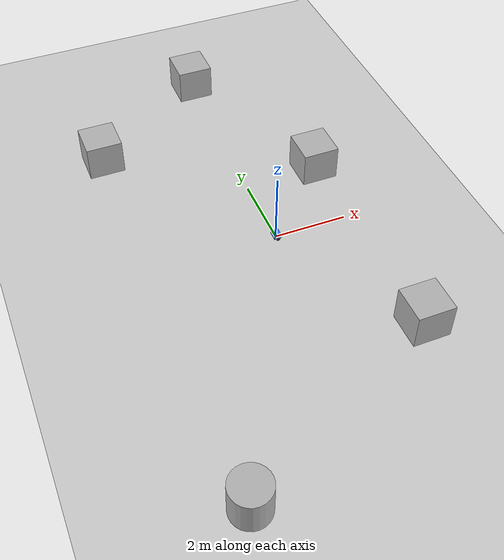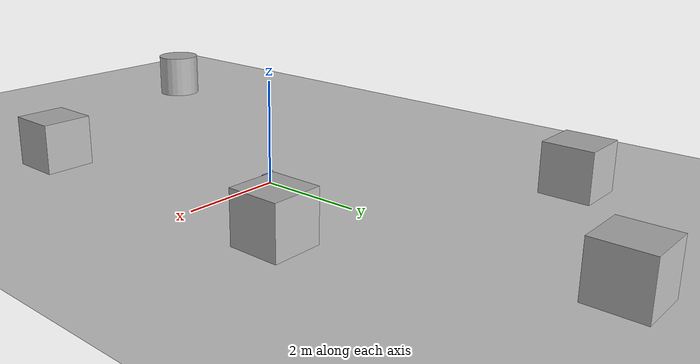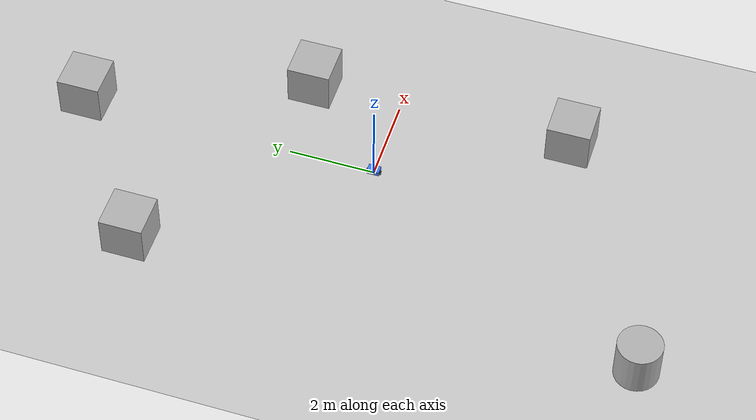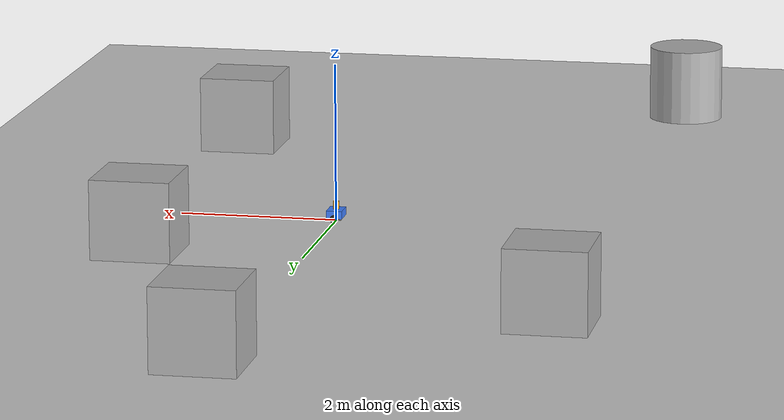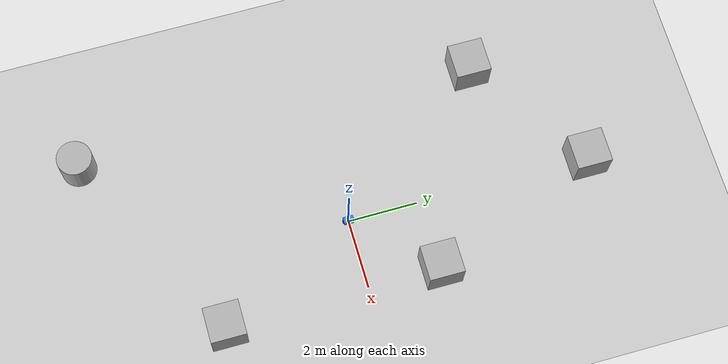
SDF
<sdf version="1.10">
 <world name="empty">
  <physics name="1ms" type="ignored">
   <max_step_size>0.001</max_step_size>
   <real_time_factor>1</real_time_factor>
   <real_time_update_rate>1000</real_time_update_rate>
  </physics>
  <plugin name="gz::sim::systems::Physics" filename="gz-sim-physics-system"/>
  <plugin name="gz::sim::systems::UserCommands" filename="gz-sim-user-commands-system"/>
  <plugin name="gz::sim::systems::SceneBroadcaster" filename="gz-sim-scene-broadcaster-system"/>
  <plugin name="gz::sim::systems::Contact" filename="gz-sim-contact-system"/>
  <plugin name="gz::sim::systems::Sensors" filename="gz-sim-sensors-system">
   <render_engine>ogre2</render_engine>
  </plugin>
  <plugin name="gz::sim::systems::Imu" filename="gz-sim-imu-system"/>
  <gravity>0 0 -9.8000000000000007</gravity>
  <magnetic_field>5.5644999999999998e-06 2.2875799999999999e-05 -4.2388400000000002e-05</magnetic_field>
  <atmosphere type="adiabatic"/>
  <scene>
   <ambient>0.400000006 0.400000006 0.400000006 1</ambient>
   <background>0.699999988 0.699999988 0.699999988 1</background>
   <shadows>true</shadows>
  </scene>
  <model name="ground_plane">
   <static>true</static>
   <link name="link">
    <collision name="collision">
     <geometry><plane><normal>0 0 1</normal><size>100 100</size></plane></geometry>
    </collision>
    <visual name="visual">
     <geometry><plane><normal>0 0 1</normal><size>100 100</size></plane></geometry>
     <material>
      <ambient>0.800000012 0.800000012 0.800000012 1</ambient>
      <diffuse>0.800000012 0.800000012 0.800000012 1</diffuse>
      <specular>0.800000012 0.800000012 0.800000012 1</specular>
     </material>
    </visual>
    <inertial>
     <mass>1</mass>
     <inertia><ixx>1</ixx><ixy>0</ixy><ixz>0</ixz><iyy>1</iyy><iyz>0</iyz><izz>1</izz></inertia>
    </inertial>
   </link>
  </model>
  <model name="diff-drive-bot">
   <link name="base_footprint">
    <inertial>
     <pose>6.9057463215637222e-20 0 0.054458598726114651 0 0 0</pose>
     <mass>3.1400000000000001</mass>
     <inertia>
      <ixx>0.024445912951167732</ixx>
      <ixy>0</ixy>
      <ixz>9.6680448501891943e-22</ixz>
      <iyy>0.01494591295116773</iyy>
      <iyz>0</iyz>
      <izz>0.029790000000000001</izz>
     </inertia>
    </inertial>
    <collision name="base_footprint_fixed_joint_lump__base_link_collision">
     <pose>0 0 0.10000000000000001 0 0 0</pose>
     <geometry><box><size>0.20000000000000001 0.28000000000000003 0.10000000000000001</size></box></geometry>
    </collision>
    <collision name="base_footprint_fixed_joint_lump__front_caster_wheel_link_collision_1">
     <pose>0.050000000000000003 0 0.025000000000000001 0 0 0</pose>
     <geometry><sphere><radius>0.025000000000000001</radius></sphere></geometry>
     <surface><friction><ode><mu>0.01</mu><mu2>0.01</mu2></ode></friction></surface>
    </collision>
    <collision name="base_footprint_fixed_joint_lump__rear_caster_wheel_link_collision_2">
     <pose>-0.050000000000000003 0 0.025000000000000001 0 0 0</pose>
     <geometry><sphere><radius>0.025000000000000001</radius></sphere></geometry>
     <surface><friction><ode><mu>0.01</mu><mu2>0.01</mu2></ode></friction></surface>
    </collision>
    <collision name="base_footprint_fixed_joint_lump__lidar_link_collision_3">
     <pose>0 0 0.20000000000000001 0 0 0</pose>
     <geometry>
      <cylinder><length>0.10000000000000001</length><radius>0.040000000000000001</radius></cylinder>
     </geometry>
    </collision>
    <visual name="base_footprint_fixed_joint_lump__base_link_visual">
     <pose>0 0 0.10000000000000001 0 0 0</pose>
     <geometry><box><size>0.20000000000000001 0.28000000000000003 0.10000000000000001</size></box></geometry>
     <material><diffuse>0.25 0.5 1 1</diffuse><ambient>0.25 0.5 1 1</ambient></material>
    </visual>
    <visual name="base_footprint_fixed_joint_lump__front_caster_wheel_link_visual_1">
     <pose>0.050000000000000003 0 0.025000000000000001 0 0 0</pose>
     <geometry><sphere><radius>0.025000000000000001</radius></sphere></geometry>
     <material>
      <diffuse>0.75000006 0.75000006 0.75000006 1</diffuse>
      <ambient>0.75000006 0.75000006 0.75000006 1</ambient>
     </material>
    </visual>
    <visual name="base_footprint_fixed_joint_lump__rear_caster_wheel_link_visual_2">
     <pose>-0.050000000000000003 0 0.025000000000000001 0 0 0</pose>
     <geometry><sphere><radius>0.025000000000000001</radius></sphere></geometry>
     <material>
      <diffuse>0.75000006 0.75000006 0.75000006 1</diffuse>
      <ambient>0.75000006 0.75000006 0.75000006 1</ambient>
     </material>
    </visual>
    <visual name="base_footprint_fixed_joint_lump__lidar_link_visual_3">
     <pose>0 0 0.20000000000000001 0 0 0</pose>
     <geometry>
      <cylinder><length>0.10000000000000001</length><radius>0.040000000000000001</radius></cylinder>
     </geometry>
     <material><diffuse>1 0.625 0 1</diffuse><ambient>1 0.625 0 1</ambient></material>
    </visual>
    <sensor name="lidar_sensor" type="gpu_lidar">
     <pose>0 0 0.20000000000000001 0 0 0</pose>
     <topic>scan</topic>
     <update_rate>10</update_rate>
     <enable_metrics>false</enable_metrics>
     <lidar>
      <scan>
       <horizontal>
        <samples>360</samples>
        <resolution>1</resolution>
        <min_angle>-3.1415899999999999</min_angle>
        <max_angle>3.1415899999999999</max_angle>
       </horizontal>
       <vertical>
        <samples>1</samples>
        <min_angle>0</min_angle>
        <max_angle>0</max_angle>
        <resolution>1</resolution>
       </vertical>
      </scan>
      <range><min>0.14999999999999999</min><max>8</max><resolution>0.01</resolution></range>
      <noise><type>gaussian</type><mean>0</mean><stddev>0.01</stddev></noise>
      <visibility_mask>4294967295</visibility_mask>
     </lidar>
    </sensor>
   </link>
   <joint name="base_to_left_wheel_joint" type="revolute">
    <parent>base_footprint</parent>
    <child>left_wheel_link</child>
    <axis>
     <xyz>0 1 0</xyz>
     <limit>
      <lower>-inf</lower>
      <upper>inf</upper>
      <effort>inf</effort>
      <velocity>inf</velocity>
      <stiffness>100000000</stiffness>
      <dissipation>1</dissipation>
     </limit>
     <dynamics>
      <spring_reference>0</spring_reference>
      <spring_stiffness>0</spring_stiffness>
      <damping>0</damping>
      <friction>0</friction>
     </dynamics>
    </axis>
   </joint>
   <link name="left_wheel_link">
    <pose>-1.4693679385278594e-39 0.153 0.050000000000000003 -5.0332628070391679e-60 -1.5348893654472561e-22 3.8627507780128117e-82</pose>
    <inertial>
     <mass>0.12</mass>
     <inertia>
      <ixx>8.1760000000000017e-05</ixx>
      <ixy>0</ixy>
      <ixz>0</ixz>
      <iyy>0.00014999999999999999</iyy>
      <iyz>0</iyz>
      <izz>8.1760000000000017e-05</izz>
     </inertia>
    </inertial>
    <collision name="left_wheel_link_collision">
     <pose>0 0 0 1.5707963267948959 0 0</pose>
     <geometry>
      <cylinder><length>0.025999999999999999</length><radius>0.050000000000000003</radius></cylinder>
     </geometry>
     <surface>
      <contact><ode><kp>1000000</kp><kd>1</kd></ode></contact>
      <friction><ode><mu>1.5</mu><mu2>1.5</mu2></ode></friction>
     </surface>
    </collision>
    <visual name="left_wheel_link_visual">
     <pose>0 0 0 1.5707963267948959 0 0</pose>
     <geometry>
      <cylinder><length>0.025999999999999999</length><radius>0.050000000000000003</radius></cylinder>
     </geometry>
     <material><diffuse>0.125 0.125 0.125 1</diffuse><ambient>0.125 0.125 0.125 1</ambient></material>
    </visual>
   </link>
   <joint name="base_to_right_wheel_joint" type="revolute">
    <parent>base_footprint</parent>
    <child>right_wheel_link</child>
    <axis>
     <xyz>0 1 0</xyz>
     <limit>
      <lower>-inf</lower>
      <upper>inf</upper>
      <effort>inf</effort>
      <velocity>inf</velocity>
      <stiffness>100000000</stiffness>
      <dissipation>1</dissipation>
     </limit>
     <dynamics>
      <spring_reference>0</spring_reference>
      <spring_stiffness>0</spring_stiffness>
      <damping>0</damping>
      <friction>0</friction>
     </dynamics>
    </axis>
   </joint>
   <link name="right_wheel_link">
    <pose>-1.4693679385278594e-39 -0.153 0.050000000000000003 -5.0332628070391038e-60 -1.5348893654472363e-22 3.8627507780127128e-82</pose>
    <inertial>
     <mass>0.12</mass>
     <inertia>
      <ixx>8.1760000000000017e-05</ixx>
      <ixy>0</ixy>
      <ixz>0</ixz>
      <iyy>0.00014999999999999999</iyy>
      <iyz>0</iyz>
      <izz>8.1760000000000017e-05</izz>
     </inertia>
    </inertial>
    <collision name="right_wheel_link_collision">
     <pose>0 0 0 1.5707963267948959 0 0</pose>
     <geometry>
      <cylinder><length>0.025999999999999999</length><radius>0.050000000000000003</radius></cylinder>
     </geometry>
     <surface>
      <contact><ode><kp>1000000</kp><kd>1</kd></ode></contact>
      <friction><ode><mu>1.5</mu><mu2>1.5</mu2></ode></friction>
     </surface>
    </collision>
    <visual name="right_wheel_link_visual">
     <pose>0 0 0 1.5707963267948959 0 0</pose>
     <geometry>
      <cylinder><length>0.025999999999999999</length><radius>0.050000000000000003</radius></cylinder>
     </geometry>
     <material><diffuse>0.125 0.125 0.125 1</diffuse><ambient>0.125 0.125 0.125 1</ambient></material>
    </visual>
   </link>
   <plugin name="gz_ros2_control::GazeboSimROS2ControlPlugin" filename="libgz_ros2_control-system.so">
    <parameters>/home/bangadmadhav/ros_projects/nav2-amr/ros2_ws/install/robot_bringup/share/robot_bringup/config/controllers.yaml</parameters>
   </plugin>
   <frame name="base_to_front_caster_wheel_joint" attached_to="base_link">
    <pose>0.050000000000000003 0 -0.025000000000000001 0 0 0</pose>
   </frame>
   <frame name="front_caster_wheel_link" attached_to="base_to_front_caster_wheel_joint"/>
   <frame name="base_to_rear_caster_wheel_joint" attached_to="base_link">
    <pose>-0.050000000000000003 0 -0.025000000000000001 0 0 0</pose>
   </frame>
   <frame name="rear_caster_wheel_link" attached_to="base_to_rear_caster_wheel_joint"/>
   <frame name="lidar_joint" attached_to="base_link"><pose>0 0 0.14999999999999999 0 0 0</pose></frame>
   <frame name="lidar_link" attached_to="lidar_joint"/>
   <frame name="base_to_footprint" attached_to="base_footprint">
    <pose>0 0 0.050000000000000003 0 0 0</pose>
   </frame>
   <frame name="base_link" attached_to="base_to_footprint"/>
   <pose>-7.674449833182243e-24 -3.7939367523234615e-22 -8.7750059631769296e-11 -1.7296716369016158e-21 1.4211943944668956e-22 6.5584452599945274e-38</pose>
   <static>false</static>
  </model>
  <model name="box">
   <pose>2.1043132491753633 -4.062245548405631 0.49999999990199806 6.2287739151293738e-22 9.3279666454713669e-22 -3.6315533669320137e-22</pose>
   <link name="box_link">
    <inertial>
     <inertia><ixx>0.16666</ixx><ixy>0</ixy><ixz>0</ixz><iyy>0.16666</iyy><iyz>0</iyz><izz>0.16666</izz></inertia>
     <mass>1</mass>
    </inertial>
    <collision name="box_collision"><geometry><box><size>1 1 1</size></box></geometry></collision>
    <visual name="box_visual">
     <geometry><box><size>1 1 1</size></box></geometry>
     <material>
      <ambient>0.300000012 0.300000012 0.300000012 1</ambient>
      <diffuse>0.699999988 0.699999988 0.699999988 1</diffuse>
      <specular>1 1 1 1</specular>
     </material>
    </visual>
   </link>
   <static>false</static>
  </model>
  <model name="cylinder">
   <pose>-3.5293640432081261 -6.9421882413476128 0.49999942638036005 -1.0898831048159516e-20 6.6802740828521509e-20 5.7246891912648797e-21</pose>
   <link name="cylinder_link">
    <inertial>
     <inertia>
      <ixx>0.14580000000000001</ixx>
      <ixy>0</ixy>
      <ixz>0</ixz>
      <iyy>0.14580000000000001</iyy>
      <iyz>0</iyz>
      <izz>0.125</izz>
     </inertia>
     <mass>1</mass>
    </inertial>
    <collision name="cylinder_collision">
     <geometry><cylinder><radius>0.5</radius><length>1</length></cylinder></geometry>
    </collision>
    <visual name="cylinder_visual">
     <geometry><cylinder><radius>0.5</radius><length>1</length></cylinder></geometry>
     <material>
      <ambient>0.300000012 0.300000012 0.300000012 1</ambient>
      <diffuse>0.699999988 0.699999988 0.699999988 1</diffuse>
      <specular>1 1 1 1</specular>
     </material>
    </visual>
   </link>
   <static>false</static>
  </model>
  <model name="box_0">
   <pose>2.0218055970449269 2.0732778023448386 0.49999999990199806 6.2287739151293738e-22 9.3279666454713669e-22 -3.6315533669320137e-22</pose>
   <link name="box_link">
    <inertial>
     <inertia><ixx>0.16666</ixx><ixy>0</ixy><ixz>0</ixz><iyy>0.16666</iyy><iyz>0</iyz><izz>0.16666</izz></inertia>
     <mass>1</mass>
    </inertial>
    <collision name="box_collision"><geometry><box><size>1 1 1</size></box></geometry></collision>
    <visual name="box_visual">
     <geometry><box><size>1 1 1</size></box></geometry>
     <material>
      <ambient>0.300000012 0.300000012 0.300000012 1</ambient>
      <diffuse>0.699999988 0.699999988 0.699999988 1</diffuse>
      <specular>1 1 1 1</specular>
     </material>
    </visual>
   </link>
   <static>false</static>
  </model>
  <model name="box_1">
   <pose>-3.4693177423851069 4.5488528938618709 0.49999999990199806 6.2287739151293738e-22 9.3279666454713669e-22 -3.6315533669320137e-22</pose>
   <link name="box_link">
    <inertial>
     <inertia><ixx>0.16666</ixx><ixy>0</ixy><ixz>0</ixz><iyy>0.16666</iyy><iyz>0</iyz><izz>0.16666</izz></inertia>
     <mass>1</mass>
    </inertial>
    <collision name="box_collision"><geometry><box><size>1 1 1</size></box></geometry></collision>
    <visual name="box_visual">
     <geometry><box><size>1 1 1</size></box></geometry>
     <material>
      <ambient>0.300000012 0.300000012 0.300000012 1</ambient>
      <diffuse>0.699999988 0.699999988 0.699999988 1</diffuse>
      <specular>1 1 1 1</specular>
     </material>
    </visual>
   </link>
   <static>false</static>
  </model>
  <model name="box_2">
   <pose>0.056531017479136469 6.9656658748363061 0.49999999990199806 6.2287739151293738e-22 9.3279666454713669e-22 -3.6315533669320137e-22</pose>
   <link name="box_link">
    <inertial>
     <inertia><ixx>0.16666</ixx><ixy>0</ixy><ixz>0</ixz><iyy>0.16666</iyy><iyz>0</iyz><izz>0.16666</izz></inertia>
     <mass>1</mass>
    </inertial>
    <collision name="box_collision"><geometry><box><size>1 1 1</size></box></geometry></collision>
    <visual name="box_visual">
     <geometry><box><size>1 1 1</size></box></geometry>
     <material>
      <ambient>0.300000012 0.300000012 0.300000012 1</ambient>
      <diffuse>0.699999988 0.699999988 0.699999988 1</diffuse>
      <specular>1 1 1 1</specular>
     </material>
    </visual>
   </link>
   <static>false</static>
  </model>
  <light name="sun" type="directional">
   <pose>0 0 10 0 0 0</pose>
   <intensity>1</intensity>
   <direction>-0.5 0.10000000000000001 -0.90000000000000002</direction>
   <diffuse>0.800000012 0.800000012 0.800000012 1</diffuse>
   <specular>0.200000003 0.200000003 0.200000003 1</specular>
   <attenuation>
    <range>1000</range>
    <linear>0.01</linear>
    <constant>0.90000000000000002</constant>
    <quadratic>0.001</quadratic>
   </attenuation>
   <spot><inner_angle>0</inner_angle><outer_angle>0</outer_angle><falloff>0</falloff></spot>
  </light>
 </world>
</sdf>
